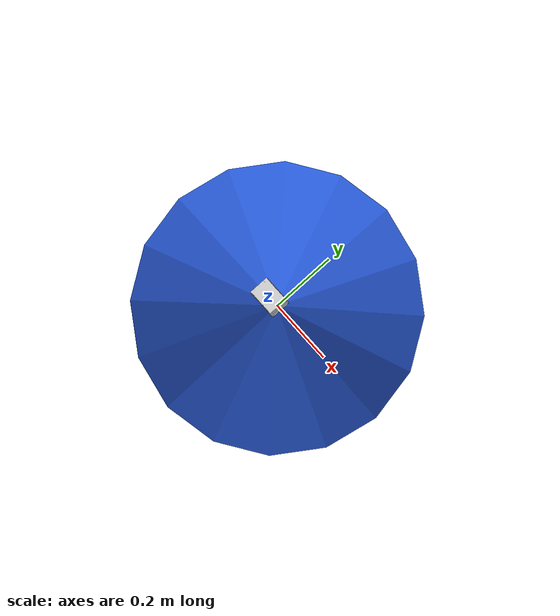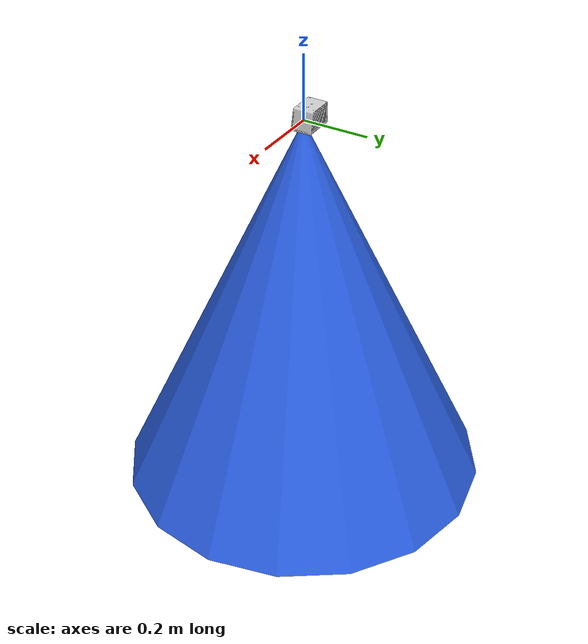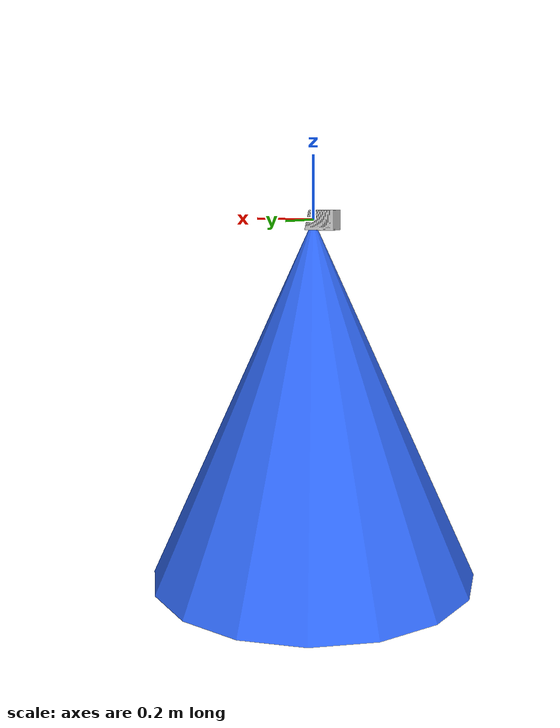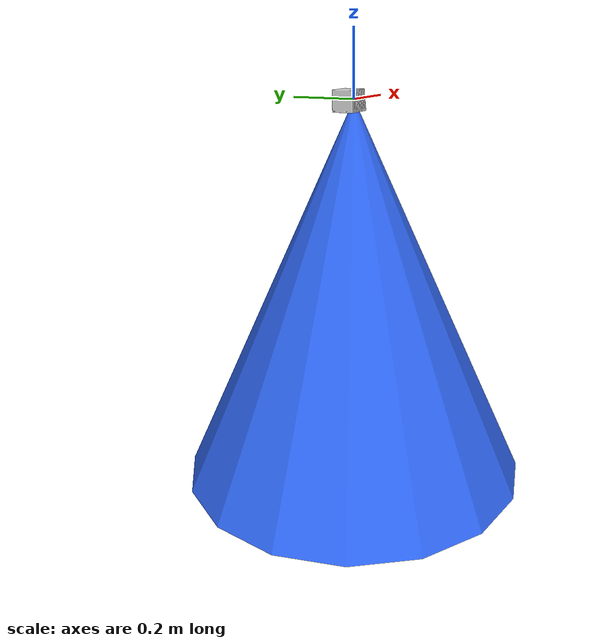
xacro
<?xml version="1.0"?>
<!-- SPDX-FileCopyrightText: 2026 FZ_XiaoXi -->
<!-- SPDX-License-Identifier: Apache-2.0 -->
<robot xmlns:xacro="http://www.ros.org/wiki/xacro" name="livox_display_model">
  <xacro:arg name="root_frame" default="livox_left_frame"/>
  <xacro:arg name="base_link" default="base_link_left_visual"/>
  <xacro:arg name="mesh_file" default="package://livox_lidar_gz_sensor/meshes/mid70.dae"/>

  <!-- The root is the dynamic sensor frame published by the Gazebo plugin. -->
  <link name="$(arg root_frame)">
    <visual name="livox_visual">
      <geometry>
        <mesh filename="$(arg mesh_file)"/>
      </geometry>
    </visual>
  </link>

  <!-- The visual-only mesh matches the Gazebo cone dimensions. -->
  <link name="$(arg base_link)">
    <visual name="base_visual">
      <geometry>
        <mesh filename="package://livox_lidar_example/urdf/robot_base_cone.obj"/>
      </geometry>
      <material name="base_material">
        <color rgba="0.18 0.40 0.95 1"/>
      </material>
    </visual>
  </link>

  <joint name="$(arg base_link)_joint" type="fixed">
    <parent link="$(arg root_frame)"/>
    <child link="$(arg base_link)"/>
    <!-- Gazebo's cone link is centered at the model pose and has a 1.2 m
         length. The sensor link is mounted 0.6 m above that center. -->
    <origin xyz="0 0 -0.6" rpy="0 0 0"/>
  </joint>
</robot>
